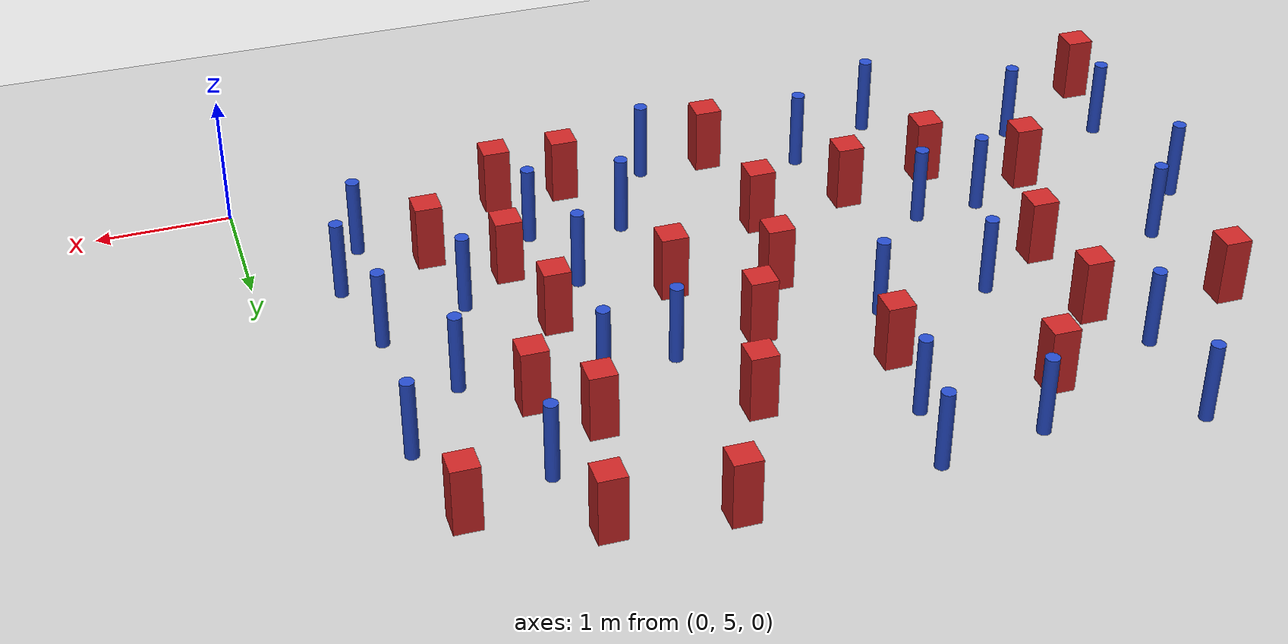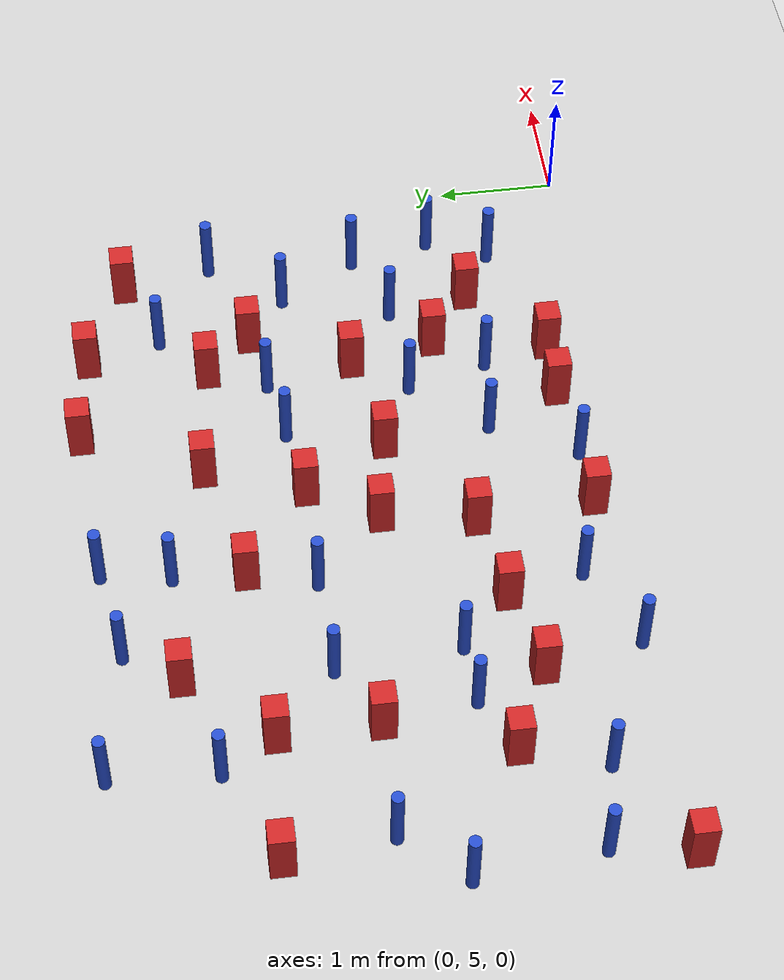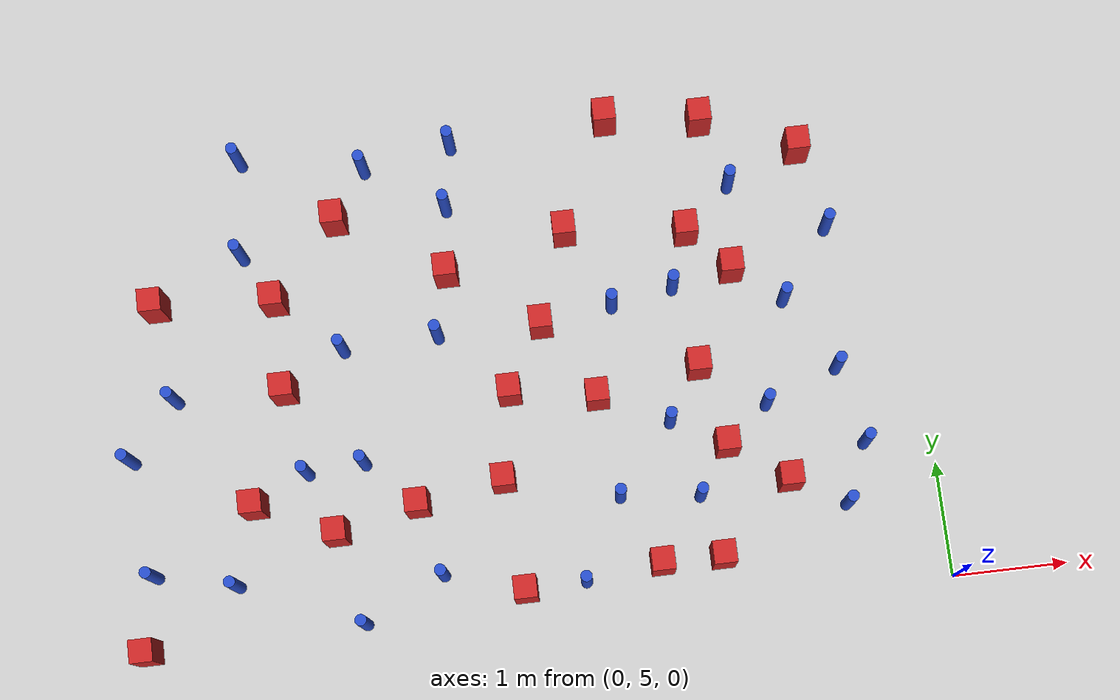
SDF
<sdf version="1.6">
 <world name="default">
  <model name="ground_plane">
   <static>1</static>
   <link name="link">
    <collision name="collision">
     <geometry><plane><normal>0 0 1</normal><size>100 100</size></plane></geometry>
     <surface><friction><ode><mu>100</mu><mu2>50</mu2></ode></friction></surface>
    </collision>
    <visual name="visual">
     <cast_shadows>0</cast_shadows>
     <geometry><plane><normal>0 0 1</normal><size>100 100</size></plane></geometry>
     <material>
      <ambient>1.0 1.0 1.0 1.0</ambient>
      <diffuse>0.8 0.8 0.8 1.0</diffuse>
      <specular>0.01 0.01 0.01 1.000000</specular>
     </material>
    </visual>
   </link>
  </model>
  <model name="square_post_obstacle10">
   <static>true</static>
   <pose>-1.92742134845 8.2964371312 8.22691968438e-08 7.22125133819e-06 -7.54495500217e-07 2.29674213826e-05</pose>
   <link name="link">
    <pose>0 0 0.25 0 -0 0</pose>
    <inertial>
     <mass>100</mass>
     <inertia>
      <ixx>0.166667</ixx>
      <ixy>0</ixy>
      <ixz>0</ixz>
      <iyy>0.166667</iyy>
      <iyz>0</iyz>
      <izz>0.166667</izz>
     </inertia>
    </inertial>
    <collision name="collision"><geometry><box><size>.2 .2 .5</size></box></geometry></collision>
    <visual name="visual">
     <geometry><box><size>.2 .2 .5</size></box></geometry>
     <material>
      <script><name>Gazebo/Red</name><uri>file://media/materials/scripts/gazebo.material</uri></script>
     </material>
    </visual>
   </link>
  </model>
  <model name="square_post_obstacle13">
   <static>true</static>
   <pose>-2.99132593924 8.41528453703 8.22691968438e-08 7.22125133819e-06 -7.54495500217e-07 2.29674213826e-05</pose>
   <link name="link">
    <pose>0 0 0.25 0 -0 0</pose>
    <inertial>
     <mass>100</mass>
     <inertia>
      <ixx>0.166667</ixx>
      <ixy>0</ixy>
      <ixz>0</ixz>
      <iyy>0.166667</iyy>
      <iyz>0</iyz>
      <izz>0.166667</izz>
     </inertia>
    </inertial>
    <collision name="collision"><geometry><box><size>.2 .2 .5</size></box></geometry></collision>
    <visual name="visual">
     <geometry><box><size>.2 .2 .5</size></box></geometry>
     <material>
      <script><name>Gazebo/Red</name><uri>file://media/materials/scripts/gazebo.material</uri></script>
     </material>
    </visual>
   </link>
  </model>
  <model name="square_post_obstacle21">
   <static>true</static>
   <pose>-6.62994186205 8.15287367369 8.22691968438e-08 7.22125133819e-06 -7.54495500217e-07 2.29674213826e-05</pose>
   <link name="link">
    <pose>0 0 0.25 0 -0 0</pose>
    <inertial>
     <mass>100</mass>
     <inertia>
      <ixx>0.166667</ixx>
      <ixy>0</ixy>
      <ixz>0</ixz>
      <iyy>0.166667</iyy>
      <iyz>0</iyz>
      <izz>0.166667</izz>
     </inertia>
    </inertial>
    <collision name="collision"><geometry><box><size>.2 .2 .5</size></box></geometry></collision>
    <visual name="visual">
     <geometry><box><size>.2 .2 .5</size></box></geometry>
     <material>
      <script><name>Gazebo/Red</name><uri>file://media/materials/scripts/gazebo.material</uri></script>
     </material>
    </visual>
   </link>
  </model>
  <model name="square_post_obstacle23">
   <static>true</static>
   <pose>-1.96392401752 7.07622774528 8.22691968438e-08 7.2212513382e-06 -7.54495500217e-07 2.29674213826e-05</pose>
   <link name="link">
    <pose>0 0 0.25 0 -0 0</pose>
    <inertial>
     <mass>100</mass>
     <inertia>
      <ixx>0.166667</ixx>
      <ixy>0</ixy>
      <ixz>0</ixz>
      <iyy>0.166667</iyy>
      <iyz>0</iyz>
      <izz>0.166667</izz>
     </inertia>
    </inertial>
    <collision name="collision"><geometry><box><size>.2 .2 .5</size></box></geometry></collision>
    <visual name="visual">
     <geometry><box><size>.2 .2 .5</size></box></geometry>
     <material>
      <script><name>Gazebo/Red</name><uri>file://media/materials/scripts/gazebo.material</uri></script>
     </material>
    </visual>
   </link>
  </model>
  <model name="square_post_obstacle33">
   <static>true</static>
   <pose>-1.96114186211 5.39734140168 8.22691968438e-08 7.2212513382e-06 -7.54495500217e-07 2.29674213826e-05</pose>
   <link name="link">
    <pose>0 0 0.25 0 -0 0</pose>
    <inertial>
     <mass>100</mass>
     <inertia>
      <ixx>0.166667</ixx>
      <ixy>0</ixy>
      <ixz>0</ixz>
      <iyy>0.166667</iyy>
      <iyz>0</iyz>
      <izz>0.166667</izz>
     </inertia>
    </inertial>
    <collision name="collision"><geometry><box><size>.2 .2 .5</size></box></geometry></collision>
    <visual name="visual">
     <geometry><box><size>.2 .2 .5</size></box></geometry>
     <material>
      <script><name>Gazebo/Red</name><uri>file://media/materials/scripts/gazebo.material</uri></script>
     </material>
    </visual>
   </link>
  </model>
  <model name="pole_obstacle28">
   <static>true</static>
   <pose>-2.65010609846 7.70298026753 2.88873142074e-08 -9.90536689859e-09 4.60219948989e-07 -1.20965994961e-07</pose>
   <link name="link">
    <pose>0 0 0.3 0 -0 0</pose>
    <inertial>
     <mass>1</mass>
     <inertia><ixx>0.145833</ixx><ixy>0</ixy><ixz>0</ixz><iyy>0.145833</iyy><iyz>0</iyz><izz>0.125</izz></inertia>
    </inertial>
    <collision name="collision">
     <geometry><cylinder><radius>0.05</radius><length>.6</length></cylinder></geometry>
    </collision>
    <visual name="visual">
     <geometry><cylinder><radius>0.05</radius><length>.6</length></cylinder></geometry>
     <material>
      <script><name>Gazebo/Blue</name><uri>file://media/materials/scripts/gazebo.material</uri></script>
     </material>
    </visual>
   </link>
  </model>
  <model name="pole_obstacle36">
   <static>true</static>
   <pose>-4.00877816002 8.75479918263 2.88873142074e-08 -9.90536689695e-09 4.60219948993e-07 -1.20965994957e-07</pose>
   <link name="link">
    <pose>0 0 0.3 0 -0 0</pose>
    <inertial>
     <mass>1</mass>
     <inertia><ixx>0.145833</ixx><ixy>0</ixy><ixz>0</ixz><iyy>0.145833</iyy><iyz>0</iyz><izz>0.125</izz></inertia>
    </inertial>
    <collision name="collision">
     <geometry><cylinder><radius>0.05</radius><length>.6</length></cylinder></geometry>
    </collision>
    <visual name="visual">
     <geometry><cylinder><radius>0.05</radius><length>.6</length></cylinder></geometry>
     <material>
      <script><name>Gazebo/Blue</name><uri>file://media/materials/scripts/gazebo.material</uri></script>
     </material>
    </visual>
   </link>
  </model>
  <model name="square_post_obstacle45">
   <static>true</static>
   <pose>-6.93263187471 5.15126520203 8.22691968438e-08 7.22125133819e-06 -7.54495500217e-07 2.29674213826e-05</pose>
   <link name="link">
    <pose>0 0 0.25 0 -0 0</pose>
    <inertial>
     <mass>100</mass>
     <inertia>
      <ixx>0.166667</ixx>
      <ixy>0</ixy>
      <ixz>0</ixz>
      <iyy>0.166667</iyy>
      <iyz>0</iyz>
      <izz>0.166667</izz>
     </inertia>
    </inertial>
    <collision name="collision"><geometry><box><size>.2 .2 .5</size></box></geometry></collision>
    <visual name="visual">
     <geometry><box><size>.2 .2 .5</size></box></geometry>
     <material>
      <script><name>Gazebo/Red</name><uri>file://media/materials/scripts/gazebo.material</uri></script>
     </material>
    </visual>
   </link>
  </model>
  <model name="square_post_obstacle46">
   <static>true</static>
   <pose>-5.57036662598 7.27902143736 8.22691968438e-08 7.22125133819e-06 -7.54495500217e-07 2.29674213826e-05</pose>
   <link name="link">
    <pose>0 0 0.25 0 -0 0</pose>
    <inertial>
     <mass>100</mass>
     <inertia>
      <ixx>0.166667</ixx>
      <ixy>0</ixy>
      <ixz>0</ixz>
      <iyy>0.166667</iyy>
      <iyz>0</iyz>
      <izz>0.166667</izz>
     </inertia>
    </inertial>
    <collision name="collision"><geometry><box><size>.2 .2 .5</size></box></geometry></collision>
    <visual name="visual">
     <geometry><box><size>.2 .2 .5</size></box></geometry>
     <material>
      <script><name>Gazebo/Red</name><uri>file://media/materials/scripts/gazebo.material</uri></script>
     </material>
    </visual>
   </link>
  </model>
  <model name="square_post_obstacle48">
   <static>true</static>
   <pose>-4.06348653907 8.16773926284 8.22691968438e-08 7.22125133819e-06 -7.54495500217e-07 2.29674213826e-05</pose>
   <link name="link">
    <pose>0 0 0.25 0 -0 0</pose>
    <inertial>
     <mass>100</mass>
     <inertia>
      <ixx>0.166667</ixx>
      <ixy>0</ixy>
      <ixz>0</ixz>
      <iyy>0.166667</iyy>
      <iyz>0</iyz>
      <izz>0.166667</izz>
     </inertia>
    </inertial>
    <collision name="collision"><geometry><box><size>.2 .2 .5</size></box></geometry></collision>
    <visual name="visual">
     <geometry><box><size>.2 .2 .5</size></box></geometry>
     <material>
      <script><name>Gazebo/Red</name><uri>file://media/materials/scripts/gazebo.material</uri></script>
     </material>
    </visual>
   </link>
  </model>
  <model name="pole_obstacle46">
   <static>true</static>
   <pose>-1.14309134219 7.58064830652 2.88873142074e-08 -9.90536689852e-09 4.60219948989e-07 -1.2096599496e-07</pose>
   <link name="link">
    <pose>0 0 0.3 0 -0 0</pose>
    <inertial>
     <mass>1</mass>
     <inertia><ixx>0.145833</ixx><ixy>0</ixy><ixz>0</ixz><iyy>0.145833</iyy><iyz>0</iyz><izz>0.125</izz></inertia>
    </inertial>
    <collision name="collision">
     <geometry><cylinder><radius>0.05</radius><length>.6</length></cylinder></geometry>
    </collision>
    <visual name="visual">
     <geometry><cylinder><radius>0.05</radius><length>.6</length></cylinder></geometry>
     <material>
      <script><name>Gazebo/Blue</name><uri>file://media/materials/scripts/gazebo.material</uri></script>
     </material>
    </visual>
   </link>
  </model>
  <model name="pole_obstacle48">
   <static>true</static>
   <pose>-0.688476099885 8.18550185533 2.88873142074e-08 -9.90536690779e-09 4.60219948967e-07 -1.20965994975e-07</pose>
   <link name="link">
    <pose>0 0 0.3 0 -0 0</pose>
    <inertial>
     <mass>1</mass>
     <inertia><ixx>0.145833</ixx><ixy>0</ixy><ixz>0</ixz><iyy>0.145833</iyy><iyz>0</iyz><izz>0.125</izz></inertia>
    </inertial>
    <collision name="collision">
     <geometry><cylinder><radius>0.05</radius><length>.6</length></cylinder></geometry>
    </collision>
    <visual name="visual">
     <geometry><cylinder><radius>0.05</radius><length>.6</length></cylinder></geometry>
     <material>
      <script><name>Gazebo/Blue</name><uri>file://media/materials/scripts/gazebo.material</uri></script>
     </material>
    </visual>
   </link>
  </model>
  <model name="pole_obstacle49">
   <static>true</static>
   <pose>-2.7737593575 6.01514552675 2.88873142074e-08 -9.90536689859e-09 4.60219948989e-07 -1.20965994961e-07</pose>
   <link name="link">
    <pose>0 0 0.3 0 -0 0</pose>
    <inertial>
     <mass>1</mass>
     <inertia><ixx>0.145833</ixx><ixy>0</ixy><ixz>0</ixz><iyy>0.145833</iyy><iyz>0</iyz><izz>0.125</izz></inertia>
    </inertial>
    <collision name="collision">
     <geometry><cylinder><radius>0.05</radius><length>.6</length></cylinder></geometry>
    </collision>
    <visual name="visual">
     <geometry><cylinder><radius>0.05</radius><length>.6</length></cylinder></geometry>
     <material>
      <script><name>Gazebo/Blue</name><uri>file://media/materials/scripts/gazebo.material</uri></script>
     </material>
    </visual>
   </link>
  </model>
  <model name="pole_obstacle51">
   <static>true</static>
   <pose>-0.763022918111 6.92270591899 2.88873142074e-08 -9.90536689661e-09 4.60219948993e-07 -1.20965994957e-07</pose>
   <link name="link">
    <pose>0 0 0.3 0 -0 0</pose>
    <inertial>
     <mass>1</mass>
     <inertia><ixx>0.145833</ixx><ixy>0</ixy><ixz>0</ixz><iyy>0.145833</iyy><iyz>0</iyz><izz>0.125</izz></inertia>
    </inertial>
    <collision name="collision">
     <geometry><cylinder><radius>0.05</radius><length>.6</length></cylinder></geometry>
    </collision>
    <visual name="visual">
     <geometry><cylinder><radius>0.05</radius><length>.6</length></cylinder></geometry>
     <material>
      <script><name>Gazebo/Blue</name><uri>file://media/materials/scripts/gazebo.material</uri></script>
     </material>
    </visual>
   </link>
  </model>
  <model name="pole_obstacle60">
   <static>true</static>
   <pose>-2.26523267733 6.61839062009 2.88873142074e-08 -9.90536689859e-09 4.60219948989e-07 -1.20965994961e-07</pose>
   <link name="link">
    <pose>0 0 0.3 0 -0 0</pose>
    <inertial>
     <mass>1</mass>
     <inertia><ixx>0.145833</ixx><ixy>0</ixy><ixz>0</ixz><iyy>0.145833</iyy><iyz>0</iyz><izz>0.125</izz></inertia>
    </inertial>
    <collision name="collision">
     <geometry><cylinder><radius>0.05</radius><length>.6</length></cylinder></geometry>
    </collision>
    <visual name="visual">
     <geometry><cylinder><radius>0.05</radius><length>.6</length></cylinder></geometry>
     <material>
      <script><name>Gazebo/Blue</name><uri>file://media/materials/scripts/gazebo.material</uri></script>
     </material>
    </visual>
   </link>
  </model>
  <model name="square_post_obstacle75">
   <static>true</static>
   <pose>-4.99476142514 8.75496374174 8.22691968438e-08 7.22125133819e-06 -7.54495500217e-07 2.29674213826e-05</pose>
   <link name="link">
    <pose>0 0 0.25 0 -0 0</pose>
    <inertial>
     <mass>100</mass>
     <inertia>
      <ixx>0.166667</ixx>
      <ixy>0</ixy>
      <ixz>0</ixz>
      <iyy>0.166667</iyy>
      <iyz>0</iyz>
      <izz>0.166667</izz>
     </inertia>
    </inertial>
    <collision name="collision"><geometry><box><size>.2 .2 .5</size></box></geometry></collision>
    <visual name="visual">
     <geometry><box><size>.2 .2 .5</size></box></geometry>
     <material>
      <script><name>Gazebo/Red</name><uri>file://media/materials/scripts/gazebo.material</uri></script>
     </material>
    </visual>
   </link>
  </model>
  <model name="pole_obstacle70">
   <static>true</static>
   <pose>-5.06387518739 5.17713683449 2.88873142074e-08 -9.90536690842e-09 4.60219948965e-07 -1.20965994976e-07</pose>
   <link name="link">
    <pose>0 0 0.3 0 -0 0</pose>
    <inertial>
     <mass>1</mass>
     <inertia><ixx>0.145833</ixx><ixy>0</ixy><ixz>0</ixz><iyy>0.145833</iyy><iyz>0</iyz><izz>0.125</izz></inertia>
    </inertial>
    <collision name="collision">
     <geometry><cylinder><radius>0.05</radius><length>.6</length></cylinder></geometry>
    </collision>
    <visual name="visual">
     <geometry><cylinder><radius>0.05</radius><length>.6</length></cylinder></geometry>
     <material>
      <script><name>Gazebo/Blue</name><uri>file://media/materials/scripts/gazebo.material</uri></script>
     </material>
    </visual>
   </link>
  </model>
  <model name="pole_obstacle71">
   <static>true</static>
   <pose>-4.69995375459 9.19304269919 2.88873142074e-08 -9.9053668967e-09 4.60219948993e-07 -1.20965994957e-07</pose>
   <link name="link">
    <pose>0 0 0.3 0 -0 0</pose>
    <inertial>
     <mass>1</mass>
     <inertia><ixx>0.145833</ixx><ixy>0</ixy><ixz>0</ixz><iyy>0.145833</iyy><iyz>0</iyz><izz>0.125</izz></inertia>
    </inertial>
    <collision name="collision">
     <geometry><cylinder><radius>0.05</radius><length>.6</length></cylinder></geometry>
    </collision>
    <visual name="visual">
     <geometry><cylinder><radius>0.05</radius><length>.6</length></cylinder></geometry>
     <material>
      <script><name>Gazebo/Blue</name><uri>file://media/materials/scripts/gazebo.material</uri></script>
     </material>
    </visual>
   </link>
  </model>
  <model name="pole_obstacle96">
   <static>true</static>
   <pose>-6.126171586 5.62672585849 2.88873142074e-08 -9.90536690842e-09 4.60219948965e-07 -1.20965994976e-07</pose>
   <link name="link">
    <pose>0 0 0.3 0 -0 0</pose>
    <inertial>
     <mass>1</mass>
     <inertia><ixx>0.145833</ixx><ixy>0</ixy><ixz>0</ixz><iyy>0.145833</iyy><iyz>0</iyz><izz>0.125</izz></inertia>
    </inertial>
    <collision name="collision">
     <geometry><cylinder><radius>0.05</radius><length>.6</length></cylinder></geometry>
    </collision>
    <visual name="visual">
     <geometry><cylinder><radius>0.05</radius><length>.6</length></cylinder></geometry>
     <material>
      <script><name>Gazebo/Blue</name><uri>file://media/materials/scripts/gazebo.material</uri></script>
     </material>
    </visual>
   </link>
  </model>
  <model name="pole_obstacle98">
   <static>true</static>
   <pose>-6.82144879322 5.78802848294 2.88873142074e-08 -9.90536690842e-09 4.60219948965e-07 -1.20965994976e-07</pose>
   <link name="link">
    <pose>0 0 0.3 0 -0 0</pose>
    <inertial>
     <mass>1</mass>
     <inertia><ixx>0.145833</ixx><ixy>0</ixy><ixz>0</ixz><iyy>0.145833</iyy><iyz>0</iyz><izz>0.125</izz></inertia>
    </inertial>
    <collision name="collision">
     <geometry><cylinder><radius>0.05</radius><length>.6</length></cylinder></geometry>
    </collision>
    <visual name="visual">
     <geometry><cylinder><radius>0.05</radius><length>.6</length></cylinder></geometry>
     <material>
      <script><name>Gazebo/Blue</name><uri>file://media/materials/scripts/gazebo.material</uri></script>
     </material>
    </visual>
   </link>
  </model>
  <model name="square_post_obstacle93">
   <static>true</static>
   <pose>-0.857798028134 8.93350977402 8.22691968438e-08 7.22125133819e-06 -7.54495500217e-07 2.29674213826e-05</pose>
   <link name="link">
    <pose>0 0 0.25 0 -0 0</pose>
    <inertial>
     <mass>100</mass>
     <inertia>
      <ixx>0.166667</ixx>
      <ixy>0</ixy>
      <ixz>0</ixz>
      <iyy>0.166667</iyy>
      <iyz>0</iyz>
      <izz>0.166667</izz>
     </inertia>
    </inertial>
    <collision name="collision"><geometry><box><size>.2 .2 .5</size></box></geometry></collision>
    <visual name="visual">
     <geometry><box><size>.2 .2 .5</size></box></geometry>
     <material>
      <script><name>Gazebo/Red</name><uri>file://media/materials/scripts/gazebo.material</uri></script>
     </material>
    </visual>
   </link>
  </model>
  <model name="pole_obstacle105">
   <static>true</static>
   <pose>-6.52453164758 7.30046207949 2.88873142074e-08 -9.90536690842e-09 4.60219948965e-07 -1.20965994976e-07</pose>
   <link name="link">
    <pose>0 0 0.3 0 -0 0</pose>
    <inertial>
     <mass>1</mass>
     <inertia><ixx>0.145833</ixx><ixy>0</ixy><ixz>0</ixz><iyy>0.145833</iyy><iyz>0</iyz><izz>0.125</izz></inertia>
    </inertial>
    <collision name="collision">
     <geometry><cylinder><radius>0.05</radius><length>.6</length></cylinder></geometry>
    </collision>
    <visual name="visual">
     <geometry><cylinder><radius>0.05</radius><length>.6</length></cylinder></geometry>
     <material>
      <script><name>Gazebo/Blue</name><uri>file://media/materials/scripts/gazebo.material</uri></script>
     </material>
    </visual>
   </link>
  </model>
  <model name="square_post_obstacle98">
   <static>true</static>
   <pose>-1.80492692983 6.35975493062 8.22691968438e-08 7.2212513382e-06 -7.54495500217e-07 2.29674213826e-05</pose>
   <link name="link">
    <pose>0 0 0.25 0 -0 0</pose>
    <inertial>
     <mass>100</mass>
     <inertia>
      <ixx>0.166667</ixx>
      <ixy>0</ixy>
      <ixz>0</ixz>
      <iyy>0.166667</iyy>
      <iyz>0</iyz>
      <izz>0.166667</izz>
     </inertia>
    </inertial>
    <collision name="collision"><geometry><box><size>.2 .2 .5</size></box></geometry></collision>
    <visual name="visual">
     <geometry><box><size>.2 .2 .5</size></box></geometry>
     <material>
      <script><name>Gazebo/Red</name><uri>file://media/materials/scripts/gazebo.material</uri></script>
     </material>
    </visual>
   </link>
  </model>
  <model name="pole_obstacle112">
   <static>true</static>
   <pose>-4.19647057198 7.61008969742 2.88873142074e-08 -9.90536690842e-09 4.60219948965e-07 -1.20965994976e-07</pose>
   <link name="link">
    <pose>0 0 0.3 0 -0 0</pose>
    <inertial>
     <mass>1</mass>
     <inertia><ixx>0.145833</ixx><ixy>0</ixy><ixz>0</ixz><iyy>0.145833</iyy><iyz>0</iyz><izz>0.125</izz></inertia>
    </inertial>
    <collision name="collision">
     <geometry><cylinder><radius>0.05</radius><length>.6</length></cylinder></geometry>
    </collision>
    <visual name="visual">
     <geometry><cylinder><radius>0.05</radius><length>.6</length></cylinder></geometry>
     <material>
      <script><name>Gazebo/Blue</name><uri>file://media/materials/scripts/gazebo.material</uri></script>
     </material>
    </visual>
   </link>
  </model>
  <model name="pole_obstacle113">
   <static>true</static>
   <pose>-6.94612451275 6.80971642164 2.88873142074e-08 -9.90536690842e-09 4.60219948965e-07 -1.20965994976e-07</pose>
   <link name="link">
    <pose>0 0 0.3 0 -0 0</pose>
    <inertial>
     <mass>1</mass>
     <inertia><ixx>0.145833</ixx><ixy>0</ixy><ixz>0</ixz><iyy>0.145833</iyy><iyz>0</iyz><izz>0.125</izz></inertia>
    </inertial>
    <collision name="collision">
     <geometry><cylinder><radius>0.05</radius><length>.6</length></cylinder></geometry>
    </collision>
    <visual name="visual">
     <geometry><cylinder><radius>0.05</radius><length>.6</length></cylinder></geometry>
     <material>
      <script><name>Gazebo/Blue</name><uri>file://media/materials/scripts/gazebo.material</uri></script>
     </material>
    </visual>
   </link>
  </model>
  <model name="pole_obstacle121">
   <static>true</static>
   <pose>-4.94385073425 6.56209497384 2.88873142074e-08 -9.90536690842e-09 4.60219948965e-07 -1.20965994976e-07</pose>
   <link name="link">
    <pose>0 0 0.3 0 -0 0</pose>
    <inertial>
     <mass>1</mass>
     <inertia><ixx>0.145833</ixx><ixy>0</ixy><ixz>0</ixz><iyy>0.145833</iyy><iyz>0</iyz><izz>0.125</izz></inertia>
    </inertial>
    <collision name="collision">
     <geometry><cylinder><radius>0.05</radius><length>.6</length></cylinder></geometry>
    </collision>
    <visual name="visual">
     <geometry><cylinder><radius>0.05</radius><length>.6</length></cylinder></geometry>
     <material>
      <script><name>Gazebo/Blue</name><uri>file://media/materials/scripts/gazebo.material</uri></script>
     </material>
    </visual>
   </link>
  </model>
  <model name="pole_obstacle122">
   <static>true</static>
   <pose>-0.829404581402 5.72512095231 2.88873142074e-08 -9.90536689661e-09 4.60219948993e-07 -1.20965994957e-07</pose>
   <link name="link">
    <pose>0 0 0.3 0 -0 0</pose>
    <inertial>
     <mass>1</mass>
     <inertia><ixx>0.145833</ixx><ixy>0</ixy><ixz>0</ixz><iyy>0.145833</iyy><iyz>0</iyz><izz>0.125</izz></inertia>
    </inertial>
    <collision name="collision">
     <geometry><cylinder><radius>0.05</radius><length>.6</length></cylinder></geometry>
    </collision>
    <visual name="visual">
     <geometry><cylinder><radius>0.05</radius><length>.6</length></cylinder></geometry>
     <material>
      <script><name>Gazebo/Blue</name><uri>file://media/materials/scripts/gazebo.material</uri></script>
     </material>
    </visual>
   </link>
  </model>
  <model name="pole_obstacle126">
   <static>true</static>
   <pose>-5.03346432273 7.58340986557 2.88873142074e-08 -9.90536690842e-09 4.60219948965e-07 -1.20965994976e-07</pose>
   <link name="link">
    <pose>0 0 0.3 0 -0 0</pose>
    <inertial>
     <mass>1</mass>
     <inertia><ixx>0.145833</ixx><ixy>0</ixy><ixz>0</ixz><iyy>0.145833</iyy><iyz>0</iyz><izz>0.125</izz></inertia>
    </inertial>
    <collision name="collision">
     <geometry><cylinder><radius>0.05</radius><length>.6</length></cylinder></geometry>
    </collision>
    <visual name="visual">
     <geometry><cylinder><radius>0.05</radius><length>.6</length></cylinder></geometry>
     <material>
      <script><name>Gazebo/Blue</name><uri>file://media/materials/scripts/gazebo.material</uri></script>
     </material>
    </visual>
   </link>
  </model>
  <model name="pole_obstacle141">
   <static>true</static>
   <pose>-4.36133942214 5.51708817576 2.88873142074e-08 -9.90536690842e-09 4.60219948965e-07 -1.20965994976e-07</pose>
   <link name="link">
    <pose>0 0 0.3 0 -0 0</pose>
    <inertial>
     <mass>1</mass>
     <inertia><ixx>0.145833</ixx><ixy>0</ixy><ixz>0</ixz><iyy>0.145833</iyy><iyz>0</iyz><izz>0.125</izz></inertia>
    </inertial>
    <collision name="collision">
     <geometry><cylinder><radius>0.05</radius><length>.6</length></cylinder></geometry>
    </collision>
    <visual name="visual">
     <geometry><cylinder><radius>0.05</radius><length>.6</length></cylinder></geometry>
     <material>
      <script><name>Gazebo/Blue</name><uri>file://media/materials/scripts/gazebo.material</uri></script>
     </material>
    </visual>
   </link>
  </model>
  <model name="square_post_obstacle127">
   <static>true</static>
   <pose>-5.91908900153 6.30223596626 8.22691968438e-08 7.2212513382e-06 -7.54495500217e-07 2.29674213826e-05</pose>
   <link name="link">
    <pose>0 0 0.25 0 -0 0</pose>
    <inertial>
     <mass>100</mass>
     <inertia>
      <ixx>0.166667</ixx>
      <ixy>0</ixy>
      <ixz>0</ixz>
      <iyy>0.166667</iyy>
      <iyz>0</iyz>
      <izz>0.166667</izz>
     </inertia>
    </inertial>
    <collision name="collision"><geometry><box><size>.2 .2 .5</size></box></geometry></collision>
    <visual name="visual">
     <geometry><box><size>.2 .2 .5</size></box></geometry>
     <material>
      <script><name>Gazebo/Red</name><uri>file://media/materials/scripts/gazebo.material</uri></script>
     </material>
    </visual>
   </link>
  </model>
  <model name="square_post_obstacle132">
   <static>true</static>
   <pose>-2.52021656397 9.39598163819 8.22691968438e-08 7.22125133819e-06 -7.54495500217e-07 2.29674213826e-05</pose>
   <link name="link">
    <pose>0 0 0.25 0 -0 0</pose>
    <inertial>
     <mass>100</mass>
     <inertia>
      <ixx>0.166667</ixx>
      <ixy>0</ixy>
      <ixz>0</ixz>
      <iyy>0.166667</iyy>
      <iyz>0</iyz>
      <izz>0.166667</izz>
     </inertia>
    </inertial>
    <collision name="collision"><geometry><box><size>.2 .2 .5</size></box></geometry></collision>
    <visual name="visual">
     <geometry><box><size>.2 .2 .5</size></box></geometry>
     <material>
      <script><name>Gazebo/Red</name><uri>file://media/materials/scripts/gazebo.material</uri></script>
     </material>
    </visual>
   </link>
  </model>
  <model name="pole_obstacle147">
   <static>true</static>
   <pose>-1.49623851164 8.67635324955 2.88873142074e-08 -9.90536690474e-09 4.60219948974e-07 -1.2096599497e-07</pose>
   <link name="link">
    <pose>0 0 0.3 0 -0 0</pose>
    <inertial>
     <mass>1</mass>
     <inertia><ixx>0.145833</ixx><ixy>0</ixy><ixz>0</ixz><iyy>0.145833</iyy><iyz>0</iyz><izz>0.125</izz></inertia>
    </inertial>
    <collision name="collision">
     <geometry><cylinder><radius>0.05</radius><length>.6</length></cylinder></geometry>
    </collision>
    <visual name="visual">
     <geometry><cylinder><radius>0.05</radius><length>.6</length></cylinder></geometry>
     <material>
      <script><name>Gazebo/Blue</name><uri>file://media/materials/scripts/gazebo.material</uri></script>
     </material>
    </visual>
   </link>
  </model>
  <model name="square_post_obstacle138">
   <static>true</static>
   <pose>-3.6733065534 5.30370924075 8.22691968438e-08 7.2212513382e-06 -7.54495500217e-07 2.29674213826e-05</pose>
   <link name="link">
    <pose>0 0 0.25 0 -0 0</pose>
    <inertial>
     <mass>100</mass>
     <inertia>
      <ixx>0.166667</ixx>
      <ixy>0</ixy>
      <ixz>0</ixz>
      <iyy>0.166667</iyy>
      <iyz>0</iyz>
      <izz>0.166667</izz>
     </inertia>
    </inertial>
    <collision name="collision"><geometry><box><size>.2 .2 .5</size></box></geometry></collision>
    <visual name="visual">
     <geometry><box><size>.2 .2 .5</size></box></geometry>
     <material>
      <script><name>Gazebo/Red</name><uri>file://media/materials/scripts/gazebo.material</uri></script>
     </material>
    </visual>
   </link>
  </model>
  <model name="pole_obstacle151">
   <static>true</static>
   <pose>-3.91246111921 9.32169903407 2.88873142074e-08 -9.9053668994e-09 4.60219948987e-07 -1.20965994963e-07</pose>
   <link name="link">
    <pose>0 0 0.3 0 -0 0</pose>
    <inertial>
     <mass>1</mass>
     <inertia><ixx>0.145833</ixx><ixy>0</ixy><ixz>0</ixz><iyy>0.145833</iyy><iyz>0</iyz><izz>0.125</izz></inertia>
    </inertial>
    <collision name="collision">
     <geometry><cylinder><radius>0.05</radius><length>.6</length></cylinder></geometry>
    </collision>
    <visual name="visual">
     <geometry><cylinder><radius>0.05</radius><length>.6</length></cylinder></geometry>
     <material>
      <script><name>Gazebo/Blue</name><uri>file://media/materials/scripts/gazebo.material</uri></script>
     </material>
    </visual>
   </link>
  </model>
  <model name="square_post_obstacle141">
   <static>true</static>
   <pose>-1.57403929111 7.91309924596 8.22691968438e-08 7.22125133819e-06 -7.54495500217e-07 2.29674213826e-05</pose>
   <link name="link">
    <pose>0 0 0.25 0 -0 0</pose>
    <inertial>
     <mass>100</mass>
     <inertia>
      <ixx>0.166667</ixx>
      <ixy>0</ixy>
      <ixz>0</ixz>
      <iyy>0.166667</iyy>
      <iyz>0</iyz>
      <izz>0.166667</izz>
     </inertia>
    </inertial>
    <collision name="collision"><geometry><box><size>.2 .2 .5</size></box></geometry></collision>
    <visual name="visual">
     <geometry><box><size>.2 .2 .5</size></box></geometry>
     <material>
      <script><name>Gazebo/Red</name><uri>file://media/materials/scripts/gazebo.material</uri></script>
     </material>
    </visual>
   </link>
  </model>
  <model name="pole_obstacle152">
   <static>true</static>
   <pose>-0.608904399985 6.2374983536 2.88873142074e-08 -9.90536689661e-09 4.60219948993e-07 -1.20965994957e-07</pose>
   <link name="link">
    <pose>0 0 0.3 0 -0 0</pose>
    <inertial>
     <mass>1</mass>
     <inertia><ixx>0.145833</ixx><ixy>0</ixy><ixz>0</ixz><iyy>0.145833</iyy><iyz>0</iyz><izz>0.125</izz></inertia>
    </inertial>
    <collision name="collision">
     <geometry><cylinder><radius>0.05</radius><length>.6</length></cylinder></geometry>
    </collision>
    <visual name="visual">
     <geometry><cylinder><radius>0.05</radius><length>.6</length></cylinder></geometry>
     <material>
      <script><name>Gazebo/Blue</name><uri>file://media/materials/scripts/gazebo.material</uri></script>
     </material>
    </visual>
   </link>
  </model>
  <model name="square_post_obstacle146">
   <static>true</static>
   <pose>-1.68530709252 9.29272327645 8.22691968438e-08 7.22125133819e-06 -7.54495500217e-07 2.29674213826e-05</pose>
   <link name="link">
    <pose>0 0 0.25 0 -0 0</pose>
    <inertial>
     <mass>100</mass>
     <inertia>
      <ixx>0.166667</ixx>
      <ixy>0</ixy>
      <ixz>0</ixz>
      <iyy>0.166667</iyy>
      <iyz>0</iyz>
      <izz>0.166667</izz>
     </inertia>
    </inertial>
    <collision name="collision"><geometry><box><size>.2 .2 .5</size></box></geometry></collision>
    <visual name="visual">
     <geometry><box><size>.2 .2 .5</size></box></geometry>
     <material>
      <script><name>Gazebo/Red</name><uri>file://media/materials/scripts/gazebo.material</uri></script>
     </material>
    </visual>
   </link>
  </model>
  <model name="square_post_obstacle147">
   <static>true</static>
   <pose>-1.30397923737 5.99922779629 8.22691968438e-08 7.2212513382e-06 -7.54495500217e-07 2.29674213826e-05</pose>
   <link name="link">
    <pose>0 0 0.25 0 -0 0</pose>
    <inertial>
     <mass>100</mass>
     <inertia>
      <ixx>0.166667</ixx>
      <ixy>0</ixy>
      <ixz>0</ixz>
      <iyy>0.166667</iyy>
      <iyz>0</iyz>
      <izz>0.166667</izz>
     </inertia>
    </inertial>
    <collision name="collision"><geometry><box><size>.2 .2 .5</size></box></geometry></collision>
    <visual name="visual">
     <geometry><box><size>.2 .2 .5</size></box></geometry>
     <material>
      <script><name>Gazebo/Red</name><uri>file://media/materials/scripts/gazebo.material</uri></script>
     </material>
    </visual>
   </link>
  </model>
  <model name="pole_obstacle165">
   <static>true</static>
   <pose>-5.78856166074 9.38834956947 2.88873142074e-08 -9.9053668967e-09 4.60219948993e-07 -1.20965994957e-07</pose>
   <link name="link">
    <pose>0 0 0.3 0 -0 0</pose>
    <inertial>
     <mass>1</mass>
     <inertia><ixx>0.145833</ixx><ixy>0</ixy><ixz>0</ixz><iyy>0.145833</iyy><iyz>0</iyz><izz>0.125</izz></inertia>
    </inertial>
    <collision name="collision">
     <geometry><cylinder><radius>0.05</radius><length>.6</length></cylinder></geometry>
    </collision>
    <visual name="visual">
     <geometry><cylinder><radius>0.05</radius><length>.6</length></cylinder></geometry>
     <material>
      <script><name>Gazebo/Blue</name><uri>file://media/materials/scripts/gazebo.material</uri></script>
     </material>
    </visual>
   </link>
  </model>
  <model name="square_post_obstacle158">
   <static>true</static>
   <pose>-2.871884974 6.91087457539 8.22691968438e-08 7.2212513382e-06 -7.54495500217e-07 2.29674213826e-05</pose>
   <link name="link">
    <pose>0 0 0.25 0 -0 0</pose>
    <inertial>
     <mass>100</mass>
     <inertia>
      <ixx>0.166667</ixx>
      <ixy>0</ixy>
      <ixz>0</ixz>
      <iyy>0.166667</iyy>
      <iyz>0</iyz>
      <izz>0.166667</izz>
     </inertia>
    </inertial>
    <collision name="collision"><geometry><box><size>.2 .2 .5</size></box></geometry></collision>
    <visual name="visual">
     <geometry><box><size>.2 .2 .5</size></box></geometry>
     <material>
      <script><name>Gazebo/Red</name><uri>file://media/materials/scripts/gazebo.material</uri></script>
     </material>
    </visual>
   </link>
  </model>
  <model name="pole_obstacle167">
   <static>true</static>
   <pose>-5.84180488584 8.52188486592 2.88873142074e-08 -9.9053668967e-09 4.60219948993e-07 -1.20965994957e-07</pose>
   <link name="link">
    <pose>0 0 0.3 0 -0 0</pose>
    <inertial>
     <mass>1</mass>
     <inertia><ixx>0.145833</ixx><ixy>0</ixy><ixz>0</ixz><iyy>0.145833</iyy><iyz>0</iyz><izz>0.125</izz></inertia>
    </inertial>
    <collision name="collision">
     <geometry><cylinder><radius>0.05</radius><length>.6</length></cylinder></geometry>
    </collision>
    <visual name="visual">
     <geometry><cylinder><radius>0.05</radius><length>.6</length></cylinder></geometry>
     <material>
      <script><name>Gazebo/Blue</name><uri>file://media/materials/scripts/gazebo.material</uri></script>
     </material>
    </visual>
   </link>
  </model>
  <model name="square_post_obstacle171">
   <static>true</static>
   <pose>-5.58738682879 8.0861113562 8.22691968438e-08 7.22125133819e-06 -7.54495500217e-07 2.29674213826e-05</pose>
   <link name="link">
    <pose>0 0 0.25 0 -0 0</pose>
    <inertial>
     <mass>100</mass>
     <inertia>
      <ixx>0.166667</ixx>
      <ixy>0</ixy>
      <ixz>0</ixz>
      <iyy>0.166667</iyy>
      <iyz>0</iyz>
      <izz>0.166667</izz>
     </inertia>
    </inertial>
    <collision name="collision"><geometry><box><size>.2 .2 .5</size></box></geometry></collision>
    <visual name="visual">
     <geometry><box><size>.2 .2 .5</size></box></geometry>
     <material>
      <script><name>Gazebo/Red</name><uri>file://media/materials/scripts/gazebo.material</uri></script>
     </material>
    </visual>
   </link>
  </model>
  <model name="square_post_obstacle179">
   <static>true</static>
   <pose>-3.28697391379 7.60842261196 8.22691968438e-08 7.2212513382e-06 -7.54495500217e-07 2.29674213826e-05</pose>
   <link name="link">
    <pose>0 0 0.25 0 -0 0</pose>
    <inertial>
     <mass>100</mass>
     <inertia>
      <ixx>0.166667</ixx>
      <ixy>0</ixy>
      <ixz>0</ixz>
      <iyy>0.166667</iyy>
      <iyz>0</iyz>
      <izz>0.166667</izz>
     </inertia>
    </inertial>
    <collision name="collision"><geometry><box><size>.2 .2 .5</size></box></geometry></collision>
    <visual name="visual">
     <geometry><box><size>.2 .2 .5</size></box></geometry>
     <material>
      <script><name>Gazebo/Red</name><uri>file://media/materials/scripts/gazebo.material</uri></script>
     </material>
    </visual>
   </link>
  </model>
  <model name="square_post_obstacle183">
   <static>true</static>
   <pose>-4.51641045404 6.14979485324 8.22691968438e-08 7.22125133819e-06 -7.54495500217e-07 2.29674213826e-05</pose>
   <link name="link">
    <pose>0 0 0.25 0 -0 0</pose>
    <inertial>
     <mass>100</mass>
     <inertia>
      <ixx>0.166667</ixx>
      <ixy>0</ixy>
      <ixz>0</ixz>
      <iyy>0.166667</iyy>
      <iyz>0</iyz>
      <izz>0.166667</izz>
     </inertia>
    </inertial>
    <collision name="collision"><geometry><box><size>.2 .2 .5</size></box></geometry></collision>
    <visual name="visual">
     <geometry><box><size>.2 .2 .5</size></box></geometry>
     <material>
      <script><name>Gazebo/Red</name><uri>file://media/materials/scripts/gazebo.material</uri></script>
     </material>
    </visual>
   </link>
  </model>
  <model name="square_post_obstacle190">
   <static>true</static>
   <pose>-3.62590977827 7.03913463111 8.22691968438e-08 7.2212513382e-06 -7.54495500217e-07 2.29674213826e-05</pose>
   <link name="link">
    <pose>0 0 0.25 0 -0 0</pose>
    <inertial>
     <mass>100</mass>
     <inertia>
      <ixx>0.166667</ixx>
      <ixy>0</ixy>
      <ixz>0</ixz>
      <iyy>0.166667</iyy>
      <iyz>0</iyz>
      <izz>0.166667</izz>
     </inertia>
    </inertial>
    <collision name="collision"><geometry><box><size>.2 .2 .5</size></box></geometry></collision>
    <visual name="visual">
     <geometry><box><size>.2 .2 .5</size></box></geometry>
     <material>
      <script><name>Gazebo/Red</name><uri>file://media/materials/scripts/gazebo.material</uri></script>
     </material>
    </visual>
   </link>
  </model>
  <model name="square_post_obstacle192">
   <static>true</static>
   <pose>-5.23392497407 5.98432146585 8.22691968438e-08 7.2212513382e-06 -7.54495500217e-07 2.29674213826e-05</pose>
   <link name="link">
    <pose>0 0 0.25 0 -0 0</pose>
    <inertial>
     <mass>100</mass>
     <inertia>
      <ixx>0.166667</ixx>
      <ixy>0</ixy>
      <ixz>0</ixz>
      <iyy>0.166667</iyy>
      <iyz>0</iyz>
      <izz>0.166667</izz>
     </inertia>
    </inertial>
    <collision name="collision"><geometry><box><size>.2 .2 .5</size></box></geometry></collision>
    <visual name="visual">
     <geometry><box><size>.2 .2 .5</size></box></geometry>
     <material>
      <script><name>Gazebo/Red</name><uri>file://media/materials/scripts/gazebo.material</uri></script>
     </material>
    </visual>
   </link>
  </model>
  <model name="square_post_obstacle197">
   <static>true</static>
   <pose>-2.48568598862 5.40183624921 8.22691968438e-08 7.2212513382e-06 -7.54495500217e-07 2.29674213826e-05</pose>
   <link name="link">
    <pose>0 0 0.25 0 -0 0</pose>
    <inertial>
     <mass>100</mass>
     <inertia>
      <ixx>0.166667</ixx>
      <ixy>0</ixy>
      <ixz>0</ixz>
      <iyy>0.166667</iyy>
      <iyz>0</iyz>
      <izz>0.166667</izz>
     </inertia>
    </inertial>
    <collision name="collision"><geometry><box><size>.2 .2 .5</size></box></geometry></collision>
    <visual name="visual">
     <geometry><box><size>.2 .2 .5</size></box></geometry>
     <material>
      <script><name>Gazebo/Red</name><uri>file://media/materials/scripts/gazebo.material</uri></script>
     </material>
    </visual>
   </link>
  </model>
  <model name="square_post_obstacle203">
   <static>true</static>
   <pose>-3.75923107157 6.27690788404 8.22691968438e-08 7.2212513382e-06 -7.54495500217e-07 2.29674213826e-05</pose>
   <link name="link">
    <pose>0 0 0.25 0 -0 0</pose>
    <inertial>
     <mass>100</mass>
     <inertia>
      <ixx>0.166667</ixx>
      <ixy>0</ixy>
      <ixz>0</ixz>
      <iyy>0.166667</iyy>
      <iyz>0</iyz>
      <izz>0.166667</izz>
     </inertia>
    </inertial>
    <collision name="collision"><geometry><box><size>.2 .2 .5</size></box></geometry></collision>
    <visual name="visual">
     <geometry><box><size>.2 .2 .5</size></box></geometry>
     <material>
      <script><name>Gazebo/Red</name><uri>file://media/materials/scripts/gazebo.material</uri></script>
     </material>
    </visual>
   </link>
  </model>
  <model name="pole_obstacle197">
   <static>true</static>
   <pose>-3.14846009156 5.31880268732 2.88873142074e-08 -9.90536692062e-09 4.60219948937e-07 -1.20965994985e-07</pose>
   <link name="link">
    <pose>0 0 0.3 0 -0 0</pose>
    <inertial>
     <mass>1</mass>
     <inertia><ixx>0.145833</ixx><ixy>0</ixy><ixz>0</ixz><iyy>0.145833</iyy><iyz>0</iyz><izz>0.125</izz></inertia>
    </inertial>
    <collision name="collision">
     <geometry><cylinder><radius>0.05</radius><length>.6</length></cylinder></geometry>
    </collision>
    <visual name="visual">
     <geometry><cylinder><radius>0.05</radius><length>.6</length></cylinder></geometry>
     <material>
      <script><name>Gazebo/Blue</name><uri>file://media/materials/scripts/gazebo.material</uri></script>
     </material>
    </visual>
   </link>
  </model>
  <model name="pole_obstacle198">
   <static>true</static>
   <pose>-2.08240759628 5.94219476107 2.88873142074e-08 -9.90536689859e-09 4.60219948989e-07 -1.20965994961e-07</pose>
   <link name="link">
    <pose>0 0 0.3 0 -0 0</pose>
    <inertial>
     <mass>1</mass>
     <inertia><ixx>0.145833</ixx><ixy>0</ixy><ixz>0</ixz><iyy>0.145833</iyy><iyz>0</iyz><izz>0.125</izz></inertia>
    </inertial>
    <collision name="collision">
     <geometry><cylinder><radius>0.05</radius><length>.6</length></cylinder></geometry>
    </collision>
    <visual name="visual">
     <geometry><cylinder><radius>0.05</radius><length>.6</length></cylinder></geometry>
     <material>
      <script><name>Gazebo/Blue</name><uri>file://media/materials/scripts/gazebo.material</uri></script>
     </material>
    </visual>
   </link>
  </model>
  <model name="pole_obstacle204">
   <static>true</static>
   <pose>-5.44321419132 6.531612433 2.88873142074e-08 -9.90536690842e-09 4.60219948965e-07 -1.20965994976e-07</pose>
   <link name="link">
    <pose>0 0 0.3 0 -0 0</pose>
    <inertial>
     <mass>1</mass>
     <inertia><ixx>0.145833</ixx><ixy>0</ixy><ixz>0</ixz><iyy>0.145833</iyy><iyz>0</iyz><izz>0.125</izz></inertia>
    </inertial>
    <collision name="collision">
     <geometry><cylinder><radius>0.05</radius><length>.6</length></cylinder></geometry>
    </collision>
    <visual name="visual">
     <geometry><cylinder><radius>0.05</radius><length>.6</length></cylinder></geometry>
     <material>
      <script><name>Gazebo/Blue</name><uri>file://media/materials/scripts/gazebo.material</uri></script>
     </material>
    </visual>
   </link>
  </model>
  <model name="pole_obstacle206">
   <static>true</static>
   <pose>-2.1001591511 7.80528524931 2.88873142074e-08 -9.90536689859e-09 4.60219948989e-07 -1.20965994961e-07</pose>
   <link name="link">
    <pose>0 0 0.3 0 -0 0</pose>
    <inertial>
     <mass>1</mass>
     <inertia><ixx>0.145833</ixx><ixy>0</ixy><ixz>0</ixz><iyy>0.145833</iyy><iyz>0</iyz><izz>0.125</izz></inertia>
    </inertial>
    <collision name="collision">
     <geometry><cylinder><radius>0.05</radius><length>.6</length></cylinder></geometry>
    </collision>
    <visual name="visual">
     <geometry><cylinder><radius>0.05</radius><length>.6</length></cylinder></geometry>
     <material>
      <script><name>Gazebo/Blue</name><uri>file://media/materials/scripts/gazebo.material</uri></script>
     </material>
    </visual>
   </link>
  </model>
  <model name="pole_obstacle209">
   <static>true</static>
   <pose>-1.41302867951 6.67306389643 2.88873142074e-08 -9.90536689852e-09 4.60219948989e-07 -1.2096599496e-07</pose>
   <link name="link">
    <pose>0 0 0.3 0 -0 0</pose>
    <inertial>
     <mass>1</mass>
     <inertia><ixx>0.145833</ixx><ixy>0</ixy><ixz>0</ixz><iyy>0.145833</iyy><iyz>0</iyz><izz>0.125</izz></inertia>
    </inertial>
    <collision name="collision">
     <geometry><cylinder><radius>0.05</radius><length>.6</length></cylinder></geometry>
    </collision>
    <visual name="visual">
     <geometry><cylinder><radius>0.05</radius><length>.6</length></cylinder></geometry>
     <material>
      <script><name>Gazebo/Blue</name><uri>file://media/materials/scripts/gazebo.material</uri></script>
     </material>
    </visual>
   </link>
  </model>
 </world>
</sdf>
